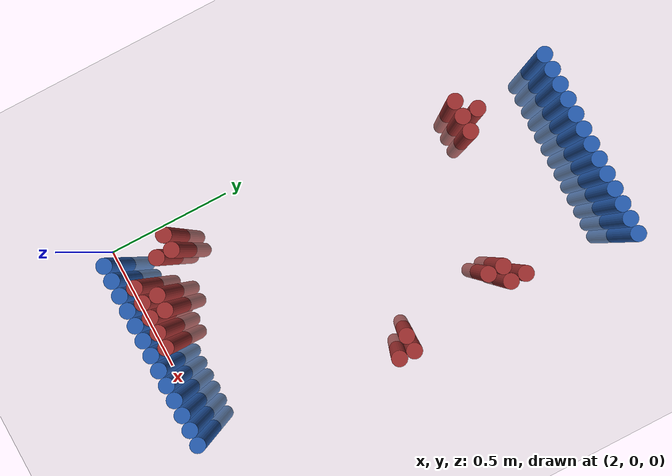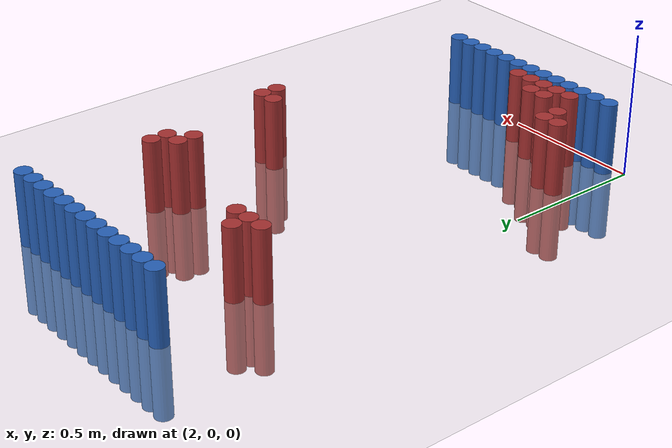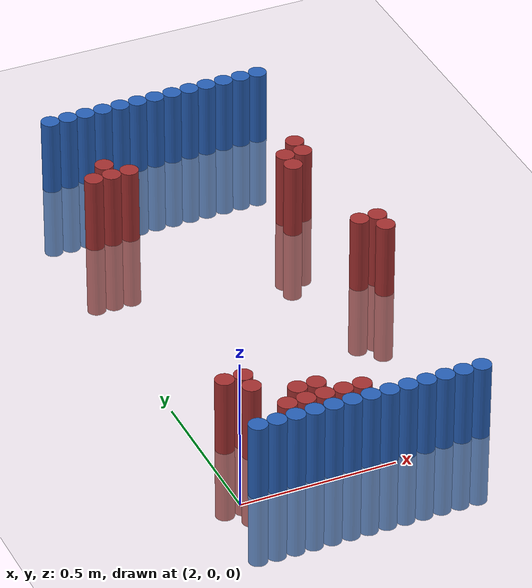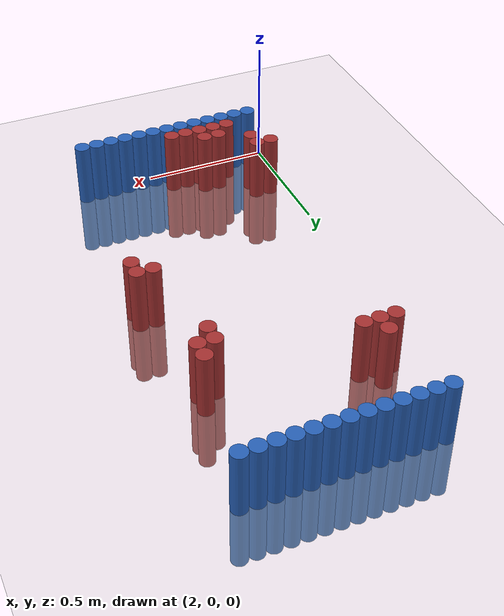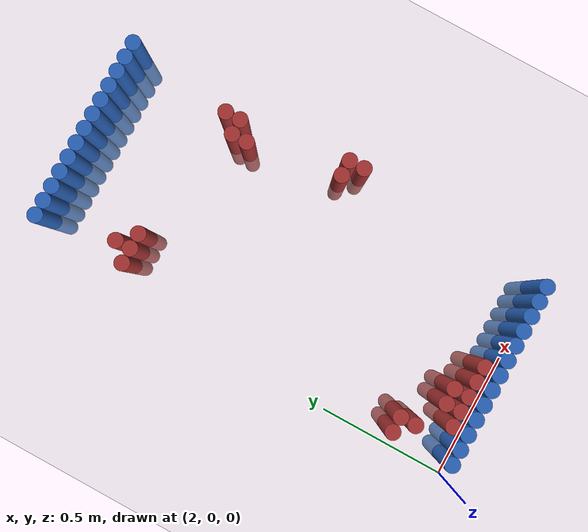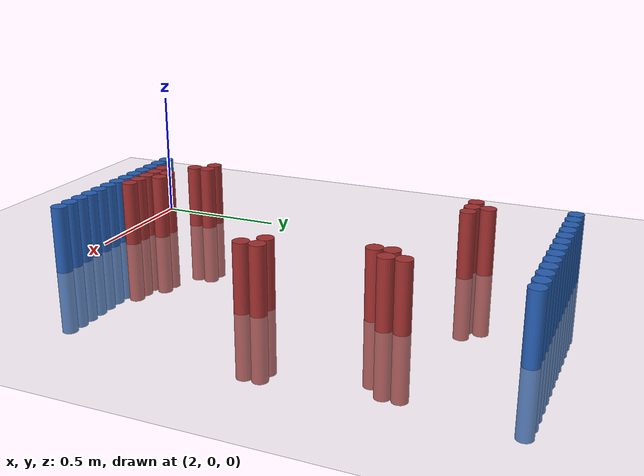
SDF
<sdf version="1.6">
 <world name="default">
  <model name="ground_plane">
   <static>1</static>
   <link name="link">
    <collision name="collision">
     <geometry><plane><normal>0 0 1</normal><size>100 100</size></plane></geometry>
     <surface><friction><ode><mu>100</mu><mu2>50</mu2></ode></friction></surface>
    </collision>
    <visual name="visual">
     <cast_shadows>0</cast_shadows>
     <geometry><plane><normal>0 0 1</normal><size>100 100</size></plane></geometry>
     <material>
      <script><uri>file://media/materials/scripts/gazebo.material</uri><name>Gazebo/Grey</name></script>
     </material>
    </visual>
   </link>
  </model>
  <model name="unit_cylinder_96">
   <static>1</static>
   <pose>2.130000 1.770000 0.000000 0.000000 0.000000 0.000000</pose>
   <link name="link">
    <inertial>
     <mass>1</mass>
     <inertia><ixx>0.145833</ixx><ixy>0</ixy><ixz>0</ixz><iyy>0.145833</iyy><iyz>0</iyz><izz>0.125</izz></inertia>
    </inertial>
    <collision name="collision">
     <geometry><cylinder><radius>0.030000</radius><length>0.5</length></cylinder></geometry>
    </collision>
    <visual name="visual">
     <geometry><cylinder><radius>0.030000</radius><length>0.5</length></cylinder></geometry>
     <material>
      <ambient>0.152000 0.379000 0.720000 1</ambient>
      <diffuse>0.152000 0.379000 0.720000 1</diffuse>
     </material>
     <material>
      <script><name>Gazebo/Grey</name><uri>file://media/materials/scripts/gazebo.material</uri></script>
     </material>
    </visual>
   </link>
  </model>
  <model name="unit_cylinder_97">
   <static>1</static>
   <pose>2.190000 1.770000 0.000000 0.000000 0.000000 0.000000</pose>
   <link name="link">
    <inertial>
     <mass>1</mass>
     <inertia><ixx>0.145833</ixx><ixy>0</ixy><ixz>0</ixz><iyy>0.145833</iyy><iyz>0</iyz><izz>0.125</izz></inertia>
    </inertial>
    <collision name="collision">
     <geometry><cylinder><radius>0.030000</radius><length>0.5</length></cylinder></geometry>
    </collision>
    <visual name="visual">
     <geometry><cylinder><radius>0.030000</radius><length>0.5</length></cylinder></geometry>
     <material>
      <ambient>0.152000 0.379000 0.720000 1</ambient>
      <diffuse>0.152000 0.379000 0.720000 1</diffuse>
     </material>
     <material>
      <script><name>Gazebo/Grey</name><uri>file://media/materials/scripts/gazebo.material</uri></script>
     </material>
    </visual>
   </link>
  </model>
  <model name="unit_cylinder_98">
   <static>1</static>
   <pose>2.250000 1.770000 0.000000 0.000000 0.000000 0.000000</pose>
   <link name="link">
    <inertial>
     <mass>1</mass>
     <inertia><ixx>0.145833</ixx><ixy>0</ixy><ixz>0</ixz><iyy>0.145833</iyy><iyz>0</iyz><izz>0.125</izz></inertia>
    </inertial>
    <collision name="collision">
     <geometry><cylinder><radius>0.030000</radius><length>0.5</length></cylinder></geometry>
    </collision>
    <visual name="visual">
     <geometry><cylinder><radius>0.030000</radius><length>0.5</length></cylinder></geometry>
     <material>
      <ambient>0.152000 0.379000 0.720000 1</ambient>
      <diffuse>0.152000 0.379000 0.720000 1</diffuse>
     </material>
     <material>
      <script><name>Gazebo/Grey</name><uri>file://media/materials/scripts/gazebo.material</uri></script>
     </material>
    </visual>
   </link>
  </model>
  <model name="unit_cylinder_99">
   <static>1</static>
   <pose>2.310000 1.770000 0.000000 0.000000 0.000000 0.000000</pose>
   <link name="link">
    <inertial>
     <mass>1</mass>
     <inertia><ixx>0.145833</ixx><ixy>0</ixy><ixz>0</ixz><iyy>0.145833</iyy><iyz>0</iyz><izz>0.125</izz></inertia>
    </inertial>
    <collision name="collision">
     <geometry><cylinder><radius>0.030000</radius><length>0.5</length></cylinder></geometry>
    </collision>
    <visual name="visual">
     <geometry><cylinder><radius>0.030000</radius><length>0.5</length></cylinder></geometry>
     <material>
      <ambient>0.152000 0.379000 0.720000 1</ambient>
      <diffuse>0.152000 0.379000 0.720000 1</diffuse>
     </material>
     <material>
      <script><name>Gazebo/Grey</name><uri>file://media/materials/scripts/gazebo.material</uri></script>
     </material>
    </visual>
   </link>
  </model>
  <model name="unit_cylinder_100">
   <static>1</static>
   <pose>2.370000 1.770000 0.000000 0.000000 0.000000 0.000000</pose>
   <link name="link">
    <inertial>
     <mass>1</mass>
     <inertia><ixx>0.145833</ixx><ixy>0</ixy><ixz>0</ixz><iyy>0.145833</iyy><iyz>0</iyz><izz>0.125</izz></inertia>
    </inertial>
    <collision name="collision">
     <geometry><cylinder><radius>0.030000</radius><length>0.5</length></cylinder></geometry>
    </collision>
    <visual name="visual">
     <geometry><cylinder><radius>0.030000</radius><length>0.5</length></cylinder></geometry>
     <material>
      <ambient>0.152000 0.379000 0.720000 1</ambient>
      <diffuse>0.152000 0.379000 0.720000 1</diffuse>
     </material>
     <material>
      <script><name>Gazebo/Grey</name><uri>file://media/materials/scripts/gazebo.material</uri></script>
     </material>
    </visual>
   </link>
  </model>
  <model name="unit_cylinder_101">
   <static>1</static>
   <pose>2.430000 1.770000 0.000000 0.000000 0.000000 0.000000</pose>
   <link name="link">
    <inertial>
     <mass>1</mass>
     <inertia><ixx>0.145833</ixx><ixy>0</ixy><ixz>0</ixz><iyy>0.145833</iyy><iyz>0</iyz><izz>0.125</izz></inertia>
    </inertial>
    <collision name="collision">
     <geometry><cylinder><radius>0.030000</radius><length>0.5</length></cylinder></geometry>
    </collision>
    <visual name="visual">
     <geometry><cylinder><radius>0.030000</radius><length>0.5</length></cylinder></geometry>
     <material>
      <ambient>0.152000 0.379000 0.720000 1</ambient>
      <diffuse>0.152000 0.379000 0.720000 1</diffuse>
     </material>
     <material>
      <script><name>Gazebo/Grey</name><uri>file://media/materials/scripts/gazebo.material</uri></script>
     </material>
    </visual>
   </link>
  </model>
  <model name="unit_cylinder_102">
   <static>1</static>
   <pose>2.490000 1.770000 0.000000 0.000000 0.000000 0.000000</pose>
   <link name="link">
    <inertial>
     <mass>1</mass>
     <inertia><ixx>0.145833</ixx><ixy>0</ixy><ixz>0</ixz><iyy>0.145833</iyy><iyz>0</iyz><izz>0.125</izz></inertia>
    </inertial>
    <collision name="collision">
     <geometry><cylinder><radius>0.030000</radius><length>0.5</length></cylinder></geometry>
    </collision>
    <visual name="visual">
     <geometry><cylinder><radius>0.030000</radius><length>0.5</length></cylinder></geometry>
     <material>
      <ambient>0.152000 0.379000 0.720000 1</ambient>
      <diffuse>0.152000 0.379000 0.720000 1</diffuse>
     </material>
     <material>
      <script><name>Gazebo/Grey</name><uri>file://media/materials/scripts/gazebo.material</uri></script>
     </material>
    </visual>
   </link>
  </model>
  <model name="unit_cylinder_103">
   <static>1</static>
   <pose>2.550000 1.770000 0.000000 0.000000 0.000000 0.000000</pose>
   <link name="link">
    <inertial>
     <mass>1</mass>
     <inertia><ixx>0.145833</ixx><ixy>0</ixy><ixz>0</ixz><iyy>0.145833</iyy><iyz>0</iyz><izz>0.125</izz></inertia>
    </inertial>
    <collision name="collision">
     <geometry><cylinder><radius>0.030000</radius><length>0.5</length></cylinder></geometry>
    </collision>
    <visual name="visual">
     <geometry><cylinder><radius>0.030000</radius><length>0.5</length></cylinder></geometry>
     <material>
      <ambient>0.152000 0.379000 0.720000 1</ambient>
      <diffuse>0.152000 0.379000 0.720000 1</diffuse>
     </material>
     <material>
      <script><name>Gazebo/Grey</name><uri>file://media/materials/scripts/gazebo.material</uri></script>
     </material>
    </visual>
   </link>
  </model>
  <model name="unit_cylinder_104">
   <static>1</static>
   <pose>2.610000 1.770000 0.000000 0.000000 0.000000 0.000000</pose>
   <link name="link">
    <inertial>
     <mass>1</mass>
     <inertia><ixx>0.145833</ixx><ixy>0</ixy><ixz>0</ixz><iyy>0.145833</iyy><iyz>0</iyz><izz>0.125</izz></inertia>
    </inertial>
    <collision name="collision">
     <geometry><cylinder><radius>0.030000</radius><length>0.5</length></cylinder></geometry>
    </collision>
    <visual name="visual">
     <geometry><cylinder><radius>0.030000</radius><length>0.5</length></cylinder></geometry>
     <material>
      <ambient>0.152000 0.379000 0.720000 1</ambient>
      <diffuse>0.152000 0.379000 0.720000 1</diffuse>
     </material>
     <material>
      <script><name>Gazebo/Grey</name><uri>file://media/materials/scripts/gazebo.material</uri></script>
     </material>
    </visual>
   </link>
  </model>
  <model name="unit_cylinder_105">
   <static>1</static>
   <pose>2.670000 1.770000 0.000000 0.000000 0.000000 0.000000</pose>
   <link name="link">
    <inertial>
     <mass>1</mass>
     <inertia><ixx>0.145833</ixx><ixy>0</ixy><ixz>0</ixz><iyy>0.145833</iyy><iyz>0</iyz><izz>0.125</izz></inertia>
    </inertial>
    <collision name="collision">
     <geometry><cylinder><radius>0.030000</radius><length>0.5</length></cylinder></geometry>
    </collision>
    <visual name="visual">
     <geometry><cylinder><radius>0.030000</radius><length>0.5</length></cylinder></geometry>
     <material>
      <ambient>0.152000 0.379000 0.720000 1</ambient>
      <diffuse>0.152000 0.379000 0.720000 1</diffuse>
     </material>
     <material>
      <script><name>Gazebo/Grey</name><uri>file://media/materials/scripts/gazebo.material</uri></script>
     </material>
    </visual>
   </link>
  </model>
  <model name="unit_cylinder_106">
   <static>1</static>
   <pose>2.730000 1.770000 0.000000 0.000000 0.000000 0.000000</pose>
   <link name="link">
    <inertial>
     <mass>1</mass>
     <inertia><ixx>0.145833</ixx><ixy>0</ixy><ixz>0</ixz><iyy>0.145833</iyy><iyz>0</iyz><izz>0.125</izz></inertia>
    </inertial>
    <collision name="collision">
     <geometry><cylinder><radius>0.030000</radius><length>0.5</length></cylinder></geometry>
    </collision>
    <visual name="visual">
     <geometry><cylinder><radius>0.030000</radius><length>0.5</length></cylinder></geometry>
     <material>
      <ambient>0.152000 0.379000 0.720000 1</ambient>
      <diffuse>0.152000 0.379000 0.720000 1</diffuse>
     </material>
     <material>
      <script><name>Gazebo/Grey</name><uri>file://media/materials/scripts/gazebo.material</uri></script>
     </material>
    </visual>
   </link>
  </model>
  <model name="unit_cylinder_107">
   <static>1</static>
   <pose>2.790000 1.770000 0.000000 0.000000 0.000000 0.000000</pose>
   <link name="link">
    <inertial>
     <mass>1</mass>
     <inertia><ixx>0.145833</ixx><ixy>0</ixy><ixz>0</ixz><iyy>0.145833</iyy><iyz>0</iyz><izz>0.125</izz></inertia>
    </inertial>
    <collision name="collision">
     <geometry><cylinder><radius>0.030000</radius><length>0.5</length></cylinder></geometry>
    </collision>
    <visual name="visual">
     <geometry><cylinder><radius>0.030000</radius><length>0.5</length></cylinder></geometry>
     <material>
      <ambient>0.152000 0.379000 0.720000 1</ambient>
      <diffuse>0.152000 0.379000 0.720000 1</diffuse>
     </material>
     <material>
      <script><name>Gazebo/Grey</name><uri>file://media/materials/scripts/gazebo.material</uri></script>
     </material>
    </visual>
   </link>
  </model>
  <model name="unit_cylinder_108">
   <static>1</static>
   <pose>2.850000 1.770000 0.000000 0.000000 0.000000 0.000000</pose>
   <link name="link">
    <inertial>
     <mass>1</mass>
     <inertia><ixx>0.145833</ixx><ixy>0</ixy><ixz>0</ixz><iyy>0.145833</iyy><iyz>0</iyz><izz>0.125</izz></inertia>
    </inertial>
    <collision name="collision">
     <geometry><cylinder><radius>0.030000</radius><length>0.5</length></cylinder></geometry>
    </collision>
    <visual name="visual">
     <geometry><cylinder><radius>0.030000</radius><length>0.5</length></cylinder></geometry>
     <material>
      <ambient>0.152000 0.379000 0.720000 1</ambient>
      <diffuse>0.152000 0.379000 0.720000 1</diffuse>
     </material>
     <material>
      <script><name>Gazebo/Grey</name><uri>file://media/materials/scripts/gazebo.material</uri></script>
     </material>
    </visual>
   </link>
  </model>
  <model name="unit_cylinder_126">
   <static>1</static>
   <pose>2.190000 1.470000 0.000000 0.000000 0.000000 0.000000</pose>
   <link name="link">
    <inertial>
     <mass>1</mass>
     <inertia><ixx>0.145833</ixx><ixy>0</ixy><ixz>0</ixz><iyy>0.145833</iyy><iyz>0</iyz><izz>0.125</izz></inertia>
    </inertial>
    <collision name="collision">
     <geometry><cylinder><radius>0.030000</radius><length>0.5</length></cylinder></geometry>
    </collision>
    <visual name="visual">
     <geometry><cylinder><radius>0.030000</radius><length>0.5</length></cylinder></geometry>
     <material>
      <ambient>0.648000 0.192000 0.192000 1</ambient>
      <diffuse>0.648000 0.192000 0.192000 1</diffuse>
     </material>
     <material>
      <script><name>Gazebo/Grey</name><uri>file://media/materials/scripts/gazebo.material</uri></script>
     </material>
    </visual>
   </link>
  </model>
  <model name="unit_cylinder_127">
   <static>1</static>
   <pose>2.130000 1.410000 0.000000 0.000000 0.000000 0.000000</pose>
   <link name="link">
    <inertial>
     <mass>1</mass>
     <inertia><ixx>0.145833</ixx><ixy>0</ixy><ixz>0</ixz><iyy>0.145833</iyy><iyz>0</iyz><izz>0.125</izz></inertia>
    </inertial>
    <collision name="collision">
     <geometry><cylinder><radius>0.030000</radius><length>0.5</length></cylinder></geometry>
    </collision>
    <visual name="visual">
     <geometry><cylinder><radius>0.030000</radius><length>0.5</length></cylinder></geometry>
     <material>
      <ambient>0.648000 0.192000 0.192000 1</ambient>
      <diffuse>0.648000 0.192000 0.192000 1</diffuse>
     </material>
     <material>
      <script><name>Gazebo/Grey</name><uri>file://media/materials/scripts/gazebo.material</uri></script>
     </material>
    </visual>
   </link>
  </model>
  <model name="unit_cylinder_128">
   <static>1</static>
   <pose>2.190000 1.410000 0.000000 0.000000 0.000000 0.000000</pose>
   <link name="link">
    <inertial>
     <mass>1</mass>
     <inertia><ixx>0.145833</ixx><ixy>0</ixy><ixz>0</ixz><iyy>0.145833</iyy><iyz>0</iyz><izz>0.125</izz></inertia>
    </inertial>
    <collision name="collision">
     <geometry><cylinder><radius>0.030000</radius><length>0.5</length></cylinder></geometry>
    </collision>
    <visual name="visual">
     <geometry><cylinder><radius>0.030000</radius><length>0.5</length></cylinder></geometry>
     <material>
      <ambient>0.648000 0.192000 0.192000 1</ambient>
      <diffuse>0.648000 0.192000 0.192000 1</diffuse>
     </material>
     <material>
      <script><name>Gazebo/Grey</name><uri>file://media/materials/scripts/gazebo.material</uri></script>
     </material>
    </visual>
   </link>
  </model>
  <model name="unit_cylinder_129">
   <static>1</static>
   <pose>2.250000 1.410000 0.000000 0.000000 0.000000 0.000000</pose>
   <link name="link">
    <inertial>
     <mass>1</mass>
     <inertia><ixx>0.145833</ixx><ixy>0</ixy><ixz>0</ixz><iyy>0.145833</iyy><iyz>0</iyz><izz>0.125</izz></inertia>
    </inertial>
    <collision name="collision">
     <geometry><cylinder><radius>0.030000</radius><length>0.5</length></cylinder></geometry>
    </collision>
    <visual name="visual">
     <geometry><cylinder><radius>0.030000</radius><length>0.5</length></cylinder></geometry>
     <material>
      <ambient>0.648000 0.192000 0.192000 1</ambient>
      <diffuse>0.648000 0.192000 0.192000 1</diffuse>
     </material>
     <material>
      <script><name>Gazebo/Grey</name><uri>file://media/materials/scripts/gazebo.material</uri></script>
     </material>
    </visual>
   </link>
  </model>
  <model name="unit_cylinder_130">
   <static>1</static>
   <pose>2.790000 1.350000 0.000000 0.000000 0.000000 0.000000</pose>
   <link name="link">
    <inertial>
     <mass>1</mass>
     <inertia><ixx>0.145833</ixx><ixy>0</ixy><ixz>0</ixz><iyy>0.145833</iyy><iyz>0</iyz><izz>0.125</izz></inertia>
    </inertial>
    <collision name="collision">
     <geometry><cylinder><radius>0.030000</radius><length>0.5</length></cylinder></geometry>
    </collision>
    <visual name="visual">
     <geometry><cylinder><radius>0.030000</radius><length>0.5</length></cylinder></geometry>
     <material>
      <ambient>0.648000 0.192000 0.192000 1</ambient>
      <diffuse>0.648000 0.192000 0.192000 1</diffuse>
     </material>
     <material>
      <script><name>Gazebo/Grey</name><uri>file://media/materials/scripts/gazebo.material</uri></script>
     </material>
    </visual>
   </link>
  </model>
  <model name="unit_cylinder_131">
   <static>1</static>
   <pose>2.730000 1.290000 0.000000 0.000000 0.000000 0.000000</pose>
   <link name="link">
    <inertial>
     <mass>1</mass>
     <inertia><ixx>0.145833</ixx><ixy>0</ixy><ixz>0</ixz><iyy>0.145833</iyy><iyz>0</iyz><izz>0.125</izz></inertia>
    </inertial>
    <collision name="collision">
     <geometry><cylinder><radius>0.030000</radius><length>0.5</length></cylinder></geometry>
    </collision>
    <visual name="visual">
     <geometry><cylinder><radius>0.030000</radius><length>0.5</length></cylinder></geometry>
     <material>
      <ambient>0.648000 0.192000 0.192000 1</ambient>
      <diffuse>0.648000 0.192000 0.192000 1</diffuse>
     </material>
     <material>
      <script><name>Gazebo/Grey</name><uri>file://media/materials/scripts/gazebo.material</uri></script>
     </material>
    </visual>
   </link>
  </model>
  <model name="unit_cylinder_132">
   <static>1</static>
   <pose>2.790000 1.290000 0.000000 0.000000 0.000000 0.000000</pose>
   <link name="link">
    <inertial>
     <mass>1</mass>
     <inertia><ixx>0.145833</ixx><ixy>0</ixy><ixz>0</ixz><iyy>0.145833</iyy><iyz>0</iyz><izz>0.125</izz></inertia>
    </inertial>
    <collision name="collision">
     <geometry><cylinder><radius>0.030000</radius><length>0.5</length></cylinder></geometry>
    </collision>
    <visual name="visual">
     <geometry><cylinder><radius>0.030000</radius><length>0.5</length></cylinder></geometry>
     <material>
      <ambient>0.648000 0.192000 0.192000 1</ambient>
      <diffuse>0.648000 0.192000 0.192000 1</diffuse>
     </material>
     <material>
      <script><name>Gazebo/Grey</name><uri>file://media/materials/scripts/gazebo.material</uri></script>
     </material>
    </visual>
   </link>
  </model>
  <model name="unit_cylinder_133">
   <static>1</static>
   <pose>2.730000 1.230000 0.000000 0.000000 0.000000 0.000000</pose>
   <link name="link">
    <inertial>
     <mass>1</mass>
     <inertia><ixx>0.145833</ixx><ixy>0</ixy><ixz>0</ixz><iyy>0.145833</iyy><iyz>0</iyz><izz>0.125</izz></inertia>
    </inertial>
    <collision name="collision">
     <geometry><cylinder><radius>0.030000</radius><length>0.5</length></cylinder></geometry>
    </collision>
    <visual name="visual">
     <geometry><cylinder><radius>0.030000</radius><length>0.5</length></cylinder></geometry>
     <material>
      <ambient>0.648000 0.192000 0.192000 1</ambient>
      <diffuse>0.648000 0.192000 0.192000 1</diffuse>
     </material>
     <material>
      <script><name>Gazebo/Grey</name><uri>file://media/materials/scripts/gazebo.material</uri></script>
     </material>
    </visual>
   </link>
  </model>
  <model name="unit_cylinder_134">
   <static>1</static>
   <pose>2.790000 0.870000 0.000000 0.000000 0.000000 0.000000</pose>
   <link name="link">
    <inertial>
     <mass>1</mass>
     <inertia><ixx>0.145833</ixx><ixy>0</ixy><ixz>0</ixz><iyy>0.145833</iyy><iyz>0</iyz><izz>0.125</izz></inertia>
    </inertial>
    <collision name="collision">
     <geometry><cylinder><radius>0.030000</radius><length>0.5</length></cylinder></geometry>
    </collision>
    <visual name="visual">
     <geometry><cylinder><radius>0.030000</radius><length>0.5</length></cylinder></geometry>
     <material>
      <ambient>0.648000 0.192000 0.192000 1</ambient>
      <diffuse>0.648000 0.192000 0.192000 1</diffuse>
     </material>
     <material>
      <script><name>Gazebo/Grey</name><uri>file://media/materials/scripts/gazebo.material</uri></script>
     </material>
    </visual>
   </link>
  </model>
  <model name="unit_cylinder_135">
   <static>1</static>
   <pose>2.850000 0.870000 0.000000 0.000000 0.000000 0.000000</pose>
   <link name="link">
    <inertial>
     <mass>1</mass>
     <inertia><ixx>0.145833</ixx><ixy>0</ixy><ixz>0</ixz><iyy>0.145833</iyy><iyz>0</iyz><izz>0.125</izz></inertia>
    </inertial>
    <collision name="collision">
     <geometry><cylinder><radius>0.030000</radius><length>0.5</length></cylinder></geometry>
    </collision>
    <visual name="visual">
     <geometry><cylinder><radius>0.030000</radius><length>0.5</length></cylinder></geometry>
     <material>
      <ambient>0.648000 0.192000 0.192000 1</ambient>
      <diffuse>0.648000 0.192000 0.192000 1</diffuse>
     </material>
     <material>
      <script><name>Gazebo/Grey</name><uri>file://media/materials/scripts/gazebo.material</uri></script>
     </material>
    </visual>
   </link>
  </model>
  <model name="unit_cylinder_136">
   <static>1</static>
   <pose>2.850000 0.810000 0.000000 0.000000 0.000000 0.000000</pose>
   <link name="link">
    <inertial>
     <mass>1</mass>
     <inertia><ixx>0.145833</ixx><ixy>0</ixy><ixz>0</ixz><iyy>0.145833</iyy><iyz>0</iyz><izz>0.125</izz></inertia>
    </inertial>
    <collision name="collision">
     <geometry><cylinder><radius>0.030000</radius><length>0.5</length></cylinder></geometry>
    </collision>
    <visual name="visual">
     <geometry><cylinder><radius>0.030000</radius><length>0.5</length></cylinder></geometry>
     <material>
      <ambient>0.648000 0.192000 0.192000 1</ambient>
      <diffuse>0.648000 0.192000 0.192000 1</diffuse>
     </material>
     <material>
      <script><name>Gazebo/Grey</name><uri>file://media/materials/scripts/gazebo.material</uri></script>
     </material>
    </visual>
   </link>
  </model>
  <model name="unit_cylinder_148">
   <static>1</static>
   <pose>2.070000 0.270000 0.000000 0.000000 0.000000 0.000000</pose>
   <link name="link">
    <inertial>
     <mass>1</mass>
     <inertia><ixx>0.145833</ixx><ixy>0</ixy><ixz>0</ixz><iyy>0.145833</iyy><iyz>0</iyz><izz>0.125</izz></inertia>
    </inertial>
    <collision name="collision">
     <geometry><cylinder><radius>0.030000</radius><length>0.5</length></cylinder></geometry>
    </collision>
    <visual name="visual">
     <geometry><cylinder><radius>0.030000</radius><length>0.5</length></cylinder></geometry>
     <material>
      <ambient>0.648000 0.192000 0.192000 1</ambient>
      <diffuse>0.648000 0.192000 0.192000 1</diffuse>
     </material>
     <material>
      <script><name>Gazebo/Grey</name><uri>file://media/materials/scripts/gazebo.material</uri></script>
     </material>
    </visual>
   </link>
  </model>
  <model name="unit_cylinder_149">
   <static>1</static>
   <pose>2.130000 0.270000 0.000000 0.000000 0.000000 0.000000</pose>
   <link name="link">
    <inertial>
     <mass>1</mass>
     <inertia><ixx>0.145833</ixx><ixy>0</ixy><ixz>0</ixz><iyy>0.145833</iyy><iyz>0</iyz><izz>0.125</izz></inertia>
    </inertial>
    <collision name="collision">
     <geometry><cylinder><radius>0.030000</radius><length>0.5</length></cylinder></geometry>
    </collision>
    <visual name="visual">
     <geometry><cylinder><radius>0.030000</radius><length>0.5</length></cylinder></geometry>
     <material>
      <ambient>0.648000 0.192000 0.192000 1</ambient>
      <diffuse>0.648000 0.192000 0.192000 1</diffuse>
     </material>
     <material>
      <script><name>Gazebo/Grey</name><uri>file://media/materials/scripts/gazebo.material</uri></script>
     </material>
    </visual>
   </link>
  </model>
  <model name="unit_cylinder_150">
   <static>1</static>
   <pose>2.130000 0.210000 0.000000 0.000000 0.000000 0.000000</pose>
   <link name="link">
    <inertial>
     <mass>1</mass>
     <inertia><ixx>0.145833</ixx><ixy>0</ixy><ixz>0</ixz><iyy>0.145833</iyy><iyz>0</iyz><izz>0.125</izz></inertia>
    </inertial>
    <collision name="collision">
     <geometry><cylinder><radius>0.030000</radius><length>0.5</length></cylinder></geometry>
    </collision>
    <visual name="visual">
     <geometry><cylinder><radius>0.030000</radius><length>0.5</length></cylinder></geometry>
     <material>
      <ambient>0.648000 0.192000 0.192000 1</ambient>
      <diffuse>0.648000 0.192000 0.192000 1</diffuse>
     </material>
     <material>
      <script><name>Gazebo/Grey</name><uri>file://media/materials/scripts/gazebo.material</uri></script>
     </material>
    </visual>
   </link>
  </model>
  <model name="unit_cylinder_151">
   <static>1</static>
   <pose>2.250000 0.150000 0.000000 0.000000 0.000000 0.000000</pose>
   <link name="link">
    <inertial>
     <mass>1</mass>
     <inertia><ixx>0.145833</ixx><ixy>0</ixy><ixz>0</ixz><iyy>0.145833</iyy><iyz>0</iyz><izz>0.125</izz></inertia>
    </inertial>
    <collision name="collision">
     <geometry><cylinder><radius>0.030000</radius><length>0.5</length></cylinder></geometry>
    </collision>
    <visual name="visual">
     <geometry><cylinder><radius>0.030000</radius><length>0.5</length></cylinder></geometry>
     <material>
      <ambient>0.648000 0.192000 0.192000 1</ambient>
      <diffuse>0.648000 0.192000 0.192000 1</diffuse>
     </material>
     <material>
      <script><name>Gazebo/Grey</name><uri>file://media/materials/scripts/gazebo.material</uri></script>
     </material>
    </visual>
   </link>
  </model>
  <model name="unit_cylinder_152">
   <static>1</static>
   <pose>2.310000 0.150000 0.000000 0.000000 0.000000 0.000000</pose>
   <link name="link">
    <inertial>
     <mass>1</mass>
     <inertia><ixx>0.145833</ixx><ixy>0</ixy><ixz>0</ixz><iyy>0.145833</iyy><iyz>0</iyz><izz>0.125</izz></inertia>
    </inertial>
    <collision name="collision">
     <geometry><cylinder><radius>0.030000</radius><length>0.5</length></cylinder></geometry>
    </collision>
    <visual name="visual">
     <geometry><cylinder><radius>0.030000</radius><length>0.5</length></cylinder></geometry>
     <material>
      <ambient>0.648000 0.192000 0.192000 1</ambient>
      <diffuse>0.648000 0.192000 0.192000 1</diffuse>
     </material>
     <material>
      <script><name>Gazebo/Grey</name><uri>file://media/materials/scripts/gazebo.material</uri></script>
     </material>
    </visual>
   </link>
  </model>
  <model name="unit_cylinder_153">
   <static>1</static>
   <pose>2.190000 0.090000 0.000000 0.000000 0.000000 0.000000</pose>
   <link name="link">
    <inertial>
     <mass>1</mass>
     <inertia><ixx>0.145833</ixx><ixy>0</ixy><ixz>0</ixz><iyy>0.145833</iyy><iyz>0</iyz><izz>0.125</izz></inertia>
    </inertial>
    <collision name="collision">
     <geometry><cylinder><radius>0.030000</radius><length>0.5</length></cylinder></geometry>
    </collision>
    <visual name="visual">
     <geometry><cylinder><radius>0.030000</radius><length>0.5</length></cylinder></geometry>
     <material>
      <ambient>0.648000 0.192000 0.192000 1</ambient>
      <diffuse>0.648000 0.192000 0.192000 1</diffuse>
     </material>
     <material>
      <script><name>Gazebo/Grey</name><uri>file://media/materials/scripts/gazebo.material</uri></script>
     </material>
    </visual>
   </link>
  </model>
  <model name="unit_cylinder_154">
   <static>1</static>
   <pose>2.250000 0.090000 0.000000 0.000000 0.000000 0.000000</pose>
   <link name="link">
    <inertial>
     <mass>1</mass>
     <inertia><ixx>0.145833</ixx><ixy>0</ixy><ixz>0</ixz><iyy>0.145833</iyy><iyz>0</iyz><izz>0.125</izz></inertia>
    </inertial>
    <collision name="collision">
     <geometry><cylinder><radius>0.030000</radius><length>0.5</length></cylinder></geometry>
    </collision>
    <visual name="visual">
     <geometry><cylinder><radius>0.030000</radius><length>0.5</length></cylinder></geometry>
     <material>
      <ambient>0.648000 0.192000 0.192000 1</ambient>
      <diffuse>0.648000 0.192000 0.192000 1</diffuse>
     </material>
     <material>
      <script><name>Gazebo/Grey</name><uri>file://media/materials/scripts/gazebo.material</uri></script>
     </material>
    </visual>
   </link>
  </model>
  <model name="unit_cylinder_155">
   <static>1</static>
   <pose>2.310000 0.090000 0.000000 0.000000 0.000000 0.000000</pose>
   <link name="link">
    <inertial>
     <mass>1</mass>
     <inertia><ixx>0.145833</ixx><ixy>0</ixy><ixz>0</ixz><iyy>0.145833</iyy><iyz>0</iyz><izz>0.125</izz></inertia>
    </inertial>
    <collision name="collision">
     <geometry><cylinder><radius>0.030000</radius><length>0.5</length></cylinder></geometry>
    </collision>
    <visual name="visual">
     <geometry><cylinder><radius>0.030000</radius><length>0.5</length></cylinder></geometry>
     <material>
      <ambient>0.648000 0.192000 0.192000 1</ambient>
      <diffuse>0.648000 0.192000 0.192000 1</diffuse>
     </material>
     <material>
      <script><name>Gazebo/Grey</name><uri>file://media/materials/scripts/gazebo.material</uri></script>
     </material>
    </visual>
   </link>
  </model>
  <model name="unit_cylinder_156">
   <static>1</static>
   <pose>2.370000 0.090000 0.000000 0.000000 0.000000 0.000000</pose>
   <link name="link">
    <inertial>
     <mass>1</mass>
     <inertia><ixx>0.145833</ixx><ixy>0</ixy><ixz>0</ixz><iyy>0.145833</iyy><iyz>0</iyz><izz>0.125</izz></inertia>
    </inertial>
    <collision name="collision">
     <geometry><cylinder><radius>0.030000</radius><length>0.5</length></cylinder></geometry>
    </collision>
    <visual name="visual">
     <geometry><cylinder><radius>0.030000</radius><length>0.5</length></cylinder></geometry>
     <material>
      <ambient>0.648000 0.192000 0.192000 1</ambient>
      <diffuse>0.648000 0.192000 0.192000 1</diffuse>
     </material>
     <material>
      <script><name>Gazebo/Grey</name><uri>file://media/materials/scripts/gazebo.material</uri></script>
     </material>
    </visual>
   </link>
  </model>
  <model name="unit_cylinder_157">
   <static>1</static>
   <pose>2.430000 0.090000 0.000000 0.000000 0.000000 0.000000</pose>
   <link name="link">
    <inertial>
     <mass>1</mass>
     <inertia><ixx>0.145833</ixx><ixy>0</ixy><ixz>0</ixz><iyy>0.145833</iyy><iyz>0</iyz><izz>0.125</izz></inertia>
    </inertial>
    <collision name="collision">
     <geometry><cylinder><radius>0.030000</radius><length>0.5</length></cylinder></geometry>
    </collision>
    <visual name="visual">
     <geometry><cylinder><radius>0.030000</radius><length>0.5</length></cylinder></geometry>
     <material>
      <ambient>0.648000 0.192000 0.192000 1</ambient>
      <diffuse>0.648000 0.192000 0.192000 1</diffuse>
     </material>
     <material>
      <script><name>Gazebo/Grey</name><uri>file://media/materials/scripts/gazebo.material</uri></script>
     </material>
    </visual>
   </link>
  </model>
  <model name="unit_cylinder_161">
   <static>1</static>
   <pose>2.070000 0.030000 0.000000 0.000000 0.000000 0.000000</pose>
   <link name="link">
    <inertial>
     <mass>1</mass>
     <inertia><ixx>0.145833</ixx><ixy>0</ixy><ixz>0</ixz><iyy>0.145833</iyy><iyz>0</iyz><izz>0.125</izz></inertia>
    </inertial>
    <collision name="collision">
     <geometry><cylinder><radius>0.030000</radius><length>0.5</length></cylinder></geometry>
    </collision>
    <visual name="visual">
     <geometry><cylinder><radius>0.030000</radius><length>0.5</length></cylinder></geometry>
     <material>
      <ambient>0.152000 0.379000 0.720000 1</ambient>
      <diffuse>0.152000 0.379000 0.720000 1</diffuse>
     </material>
     <material>
      <script><name>Gazebo/Grey</name><uri>file://media/materials/scripts/gazebo.material</uri></script>
     </material>
    </visual>
   </link>
  </model>
  <model name="unit_cylinder_162">
   <static>1</static>
   <pose>2.130000 0.030000 0.000000 0.000000 0.000000 0.000000</pose>
   <link name="link">
    <inertial>
     <mass>1</mass>
     <inertia><ixx>0.145833</ixx><ixy>0</ixy><ixz>0</ixz><iyy>0.145833</iyy><iyz>0</iyz><izz>0.125</izz></inertia>
    </inertial>
    <collision name="collision">
     <geometry><cylinder><radius>0.030000</radius><length>0.5</length></cylinder></geometry>
    </collision>
    <visual name="visual">
     <geometry><cylinder><radius>0.030000</radius><length>0.5</length></cylinder></geometry>
     <material>
      <ambient>0.152000 0.379000 0.720000 1</ambient>
      <diffuse>0.152000 0.379000 0.720000 1</diffuse>
     </material>
     <material>
      <script><name>Gazebo/Grey</name><uri>file://media/materials/scripts/gazebo.material</uri></script>
     </material>
    </visual>
   </link>
  </model>
  <model name="unit_cylinder_163">
   <static>1</static>
   <pose>2.190000 0.030000 0.000000 0.000000 0.000000 0.000000</pose>
   <link name="link">
    <inertial>
     <mass>1</mass>
     <inertia><ixx>0.145833</ixx><ixy>0</ixy><ixz>0</ixz><iyy>0.145833</iyy><iyz>0</iyz><izz>0.125</izz></inertia>
    </inertial>
    <collision name="collision">
     <geometry><cylinder><radius>0.030000</radius><length>0.5</length></cylinder></geometry>
    </collision>
    <visual name="visual">
     <geometry><cylinder><radius>0.030000</radius><length>0.5</length></cylinder></geometry>
     <material>
      <ambient>0.152000 0.379000 0.720000 1</ambient>
      <diffuse>0.152000 0.379000 0.720000 1</diffuse>
     </material>
     <material>
      <script><name>Gazebo/Grey</name><uri>file://media/materials/scripts/gazebo.material</uri></script>
     </material>
    </visual>
   </link>
  </model>
  <model name="unit_cylinder_164">
   <static>1</static>
   <pose>2.250000 0.030000 0.000000 0.000000 0.000000 0.000000</pose>
   <link name="link">
    <inertial>
     <mass>1</mass>
     <inertia><ixx>0.145833</ixx><ixy>0</ixy><ixz>0</ixz><iyy>0.145833</iyy><iyz>0</iyz><izz>0.125</izz></inertia>
    </inertial>
    <collision name="collision">
     <geometry><cylinder><radius>0.030000</radius><length>0.5</length></cylinder></geometry>
    </collision>
    <visual name="visual">
     <geometry><cylinder><radius>0.030000</radius><length>0.5</length></cylinder></geometry>
     <material>
      <ambient>0.152000 0.379000 0.720000 1</ambient>
      <diffuse>0.152000 0.379000 0.720000 1</diffuse>
     </material>
     <material>
      <script><name>Gazebo/Grey</name><uri>file://media/materials/scripts/gazebo.material</uri></script>
     </material>
    </visual>
   </link>
  </model>
  <model name="unit_cylinder_165">
   <static>1</static>
   <pose>2.310000 0.030000 0.000000 0.000000 0.000000 0.000000</pose>
   <link name="link">
    <inertial>
     <mass>1</mass>
     <inertia><ixx>0.145833</ixx><ixy>0</ixy><ixz>0</ixz><iyy>0.145833</iyy><iyz>0</iyz><izz>0.125</izz></inertia>
    </inertial>
    <collision name="collision">
     <geometry><cylinder><radius>0.030000</radius><length>0.5</length></cylinder></geometry>
    </collision>
    <visual name="visual">
     <geometry><cylinder><radius>0.030000</radius><length>0.5</length></cylinder></geometry>
     <material>
      <ambient>0.152000 0.379000 0.720000 1</ambient>
      <diffuse>0.152000 0.379000 0.720000 1</diffuse>
     </material>
     <material>
      <script><name>Gazebo/Grey</name><uri>file://media/materials/scripts/gazebo.material</uri></script>
     </material>
    </visual>
   </link>
  </model>
  <model name="unit_cylinder_166">
   <static>1</static>
   <pose>2.370000 0.030000 0.000000 0.000000 0.000000 0.000000</pose>
   <link name="link">
    <inertial>
     <mass>1</mass>
     <inertia><ixx>0.145833</ixx><ixy>0</ixy><ixz>0</ixz><iyy>0.145833</iyy><iyz>0</iyz><izz>0.125</izz></inertia>
    </inertial>
    <collision name="collision">
     <geometry><cylinder><radius>0.030000</radius><length>0.5</length></cylinder></geometry>
    </collision>
    <visual name="visual">
     <geometry><cylinder><radius>0.030000</radius><length>0.5</length></cylinder></geometry>
     <material>
      <ambient>0.152000 0.379000 0.720000 1</ambient>
      <diffuse>0.152000 0.379000 0.720000 1</diffuse>
     </material>
     <material>
      <script><name>Gazebo/Grey</name><uri>file://media/materials/scripts/gazebo.material</uri></script>
     </material>
    </visual>
   </link>
  </model>
  <model name="unit_cylinder_167">
   <static>1</static>
   <pose>2.430000 0.030000 0.000000 0.000000 0.000000 0.000000</pose>
   <link name="link">
    <inertial>
     <mass>1</mass>
     <inertia><ixx>0.145833</ixx><ixy>0</ixy><ixz>0</ixz><iyy>0.145833</iyy><iyz>0</iyz><izz>0.125</izz></inertia>
    </inertial>
    <collision name="collision">
     <geometry><cylinder><radius>0.030000</radius><length>0.5</length></cylinder></geometry>
    </collision>
    <visual name="visual">
     <geometry><cylinder><radius>0.030000</radius><length>0.5</length></cylinder></geometry>
     <material>
      <ambient>0.152000 0.379000 0.720000 1</ambient>
      <diffuse>0.152000 0.379000 0.720000 1</diffuse>
     </material>
     <material>
      <script><name>Gazebo/Grey</name><uri>file://media/materials/scripts/gazebo.material</uri></script>
     </material>
    </visual>
   </link>
  </model>
  <model name="unit_cylinder_168">
   <static>1</static>
   <pose>2.490000 0.030000 0.000000 0.000000 0.000000 0.000000</pose>
   <link name="link">
    <inertial>
     <mass>1</mass>
     <inertia><ixx>0.145833</ixx><ixy>0</ixy><ixz>0</ixz><iyy>0.145833</iyy><iyz>0</iyz><izz>0.125</izz></inertia>
    </inertial>
    <collision name="collision">
     <geometry><cylinder><radius>0.030000</radius><length>0.5</length></cylinder></geometry>
    </collision>
    <visual name="visual">
     <geometry><cylinder><radius>0.030000</radius><length>0.5</length></cylinder></geometry>
     <material>
      <ambient>0.152000 0.379000 0.720000 1</ambient>
      <diffuse>0.152000 0.379000 0.720000 1</diffuse>
     </material>
     <material>
      <script><name>Gazebo/Grey</name><uri>file://media/materials/scripts/gazebo.material</uri></script>
     </material>
    </visual>
   </link>
  </model>
  <model name="unit_cylinder_169">
   <static>1</static>
   <pose>2.550000 0.030000 0.000000 0.000000 0.000000 0.000000</pose>
   <link name="link">
    <inertial>
     <mass>1</mass>
     <inertia><ixx>0.145833</ixx><ixy>0</ixy><ixz>0</ixz><iyy>0.145833</iyy><iyz>0</iyz><izz>0.125</izz></inertia>
    </inertial>
    <collision name="collision">
     <geometry><cylinder><radius>0.030000</radius><length>0.5</length></cylinder></geometry>
    </collision>
    <visual name="visual">
     <geometry><cylinder><radius>0.030000</radius><length>0.5</length></cylinder></geometry>
     <material>
      <ambient>0.152000 0.379000 0.720000 1</ambient>
      <diffuse>0.152000 0.379000 0.720000 1</diffuse>
     </material>
     <material>
      <script><name>Gazebo/Grey</name><uri>file://media/materials/scripts/gazebo.material</uri></script>
     </material>
    </visual>
   </link>
  </model>
  <model name="unit_cylinder_170">
   <static>1</static>
   <pose>2.610000 0.030000 0.000000 0.000000 0.000000 0.000000</pose>
   <link name="link">
    <inertial>
     <mass>1</mass>
     <inertia><ixx>0.145833</ixx><ixy>0</ixy><ixz>0</ixz><iyy>0.145833</iyy><iyz>0</iyz><izz>0.125</izz></inertia>
    </inertial>
    <collision name="collision">
     <geometry><cylinder><radius>0.030000</radius><length>0.5</length></cylinder></geometry>
    </collision>
    <visual name="visual">
     <geometry><cylinder><radius>0.030000</radius><length>0.5</length></cylinder></geometry>
     <material>
      <ambient>0.152000 0.379000 0.720000 1</ambient>
      <diffuse>0.152000 0.379000 0.720000 1</diffuse>
     </material>
     <material>
      <script><name>Gazebo/Grey</name><uri>file://media/materials/scripts/gazebo.material</uri></script>
     </material>
    </visual>
   </link>
  </model>
  <model name="unit_cylinder_171">
   <static>1</static>
   <pose>2.670000 0.030000 0.000000 0.000000 0.000000 0.000000</pose>
   <link name="link">
    <inertial>
     <mass>1</mass>
     <inertia><ixx>0.145833</ixx><ixy>0</ixy><ixz>0</ixz><iyy>0.145833</iyy><iyz>0</iyz><izz>0.125</izz></inertia>
    </inertial>
    <collision name="collision">
     <geometry><cylinder><radius>0.030000</radius><length>0.5</length></cylinder></geometry>
    </collision>
    <visual name="visual">
     <geometry><cylinder><radius>0.030000</radius><length>0.5</length></cylinder></geometry>
     <material>
      <ambient>0.152000 0.379000 0.720000 1</ambient>
      <diffuse>0.152000 0.379000 0.720000 1</diffuse>
     </material>
     <material>
      <script><name>Gazebo/Grey</name><uri>file://media/materials/scripts/gazebo.material</uri></script>
     </material>
    </visual>
   </link>
  </model>
  <model name="unit_cylinder_172">
   <static>1</static>
   <pose>2.730000 0.030000 0.000000 0.000000 0.000000 0.000000</pose>
   <link name="link">
    <inertial>
     <mass>1</mass>
     <inertia><ixx>0.145833</ixx><ixy>0</ixy><ixz>0</ixz><iyy>0.145833</iyy><iyz>0</iyz><izz>0.125</izz></inertia>
    </inertial>
    <collision name="collision">
     <geometry><cylinder><radius>0.030000</radius><length>0.5</length></cylinder></geometry>
    </collision>
    <visual name="visual">
     <geometry><cylinder><radius>0.030000</radius><length>0.5</length></cylinder></geometry>
     <material>
      <ambient>0.152000 0.379000 0.720000 1</ambient>
      <diffuse>0.152000 0.379000 0.720000 1</diffuse>
     </material>
     <material>
      <script><name>Gazebo/Grey</name><uri>file://media/materials/scripts/gazebo.material</uri></script>
     </material>
    </visual>
   </link>
  </model>
  <model name="unit_cylinder_173">
   <static>1</static>
   <pose>2.790000 0.030000 0.000000 0.000000 0.000000 0.000000</pose>
   <link name="link">
    <inertial>
     <mass>1</mass>
     <inertia><ixx>0.145833</ixx><ixy>0</ixy><ixz>0</ixz><iyy>0.145833</iyy><iyz>0</iyz><izz>0.125</izz></inertia>
    </inertial>
    <collision name="collision">
     <geometry><cylinder><radius>0.030000</radius><length>0.5</length></cylinder></geometry>
    </collision>
    <visual name="visual">
     <geometry><cylinder><radius>0.030000</radius><length>0.5</length></cylinder></geometry>
     <material>
      <ambient>0.152000 0.379000 0.720000 1</ambient>
      <diffuse>0.152000 0.379000 0.720000 1</diffuse>
     </material>
     <material>
      <script><name>Gazebo/Grey</name><uri>file://media/materials/scripts/gazebo.material</uri></script>
     </material>
    </visual>
   </link>
  </model>
 </world>
</sdf>
